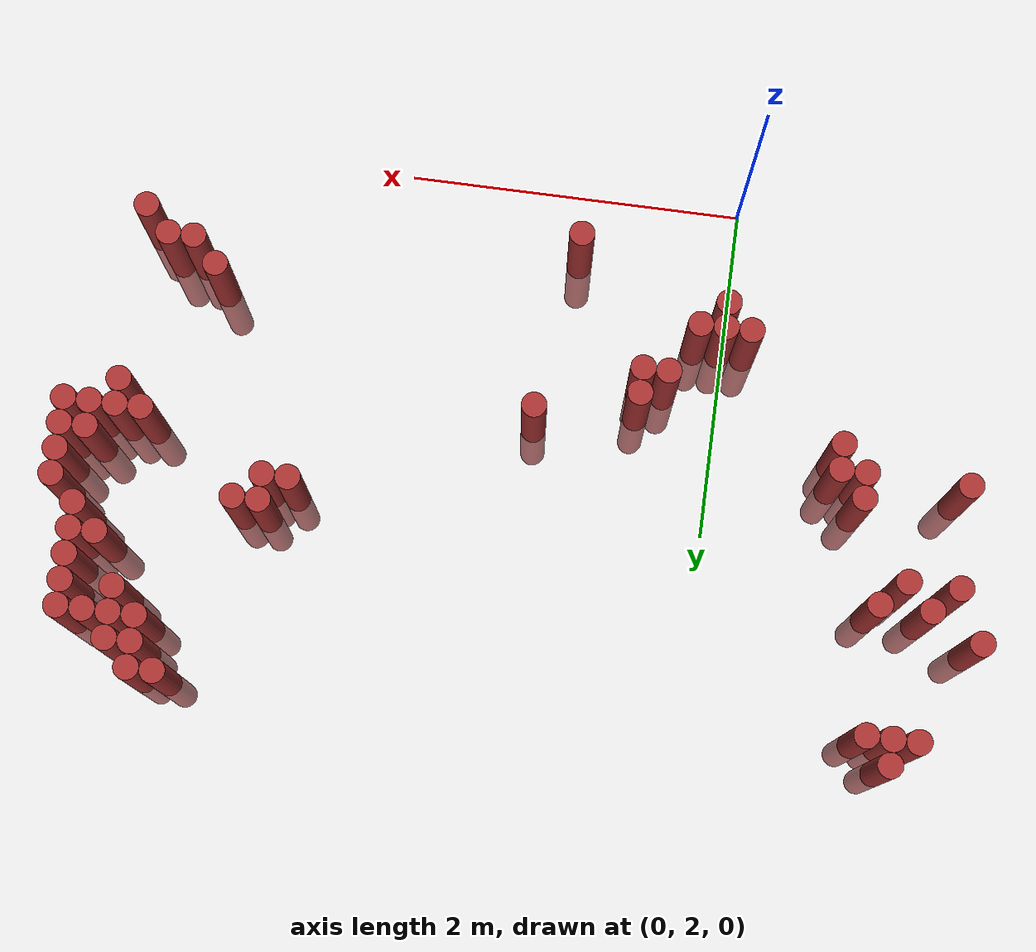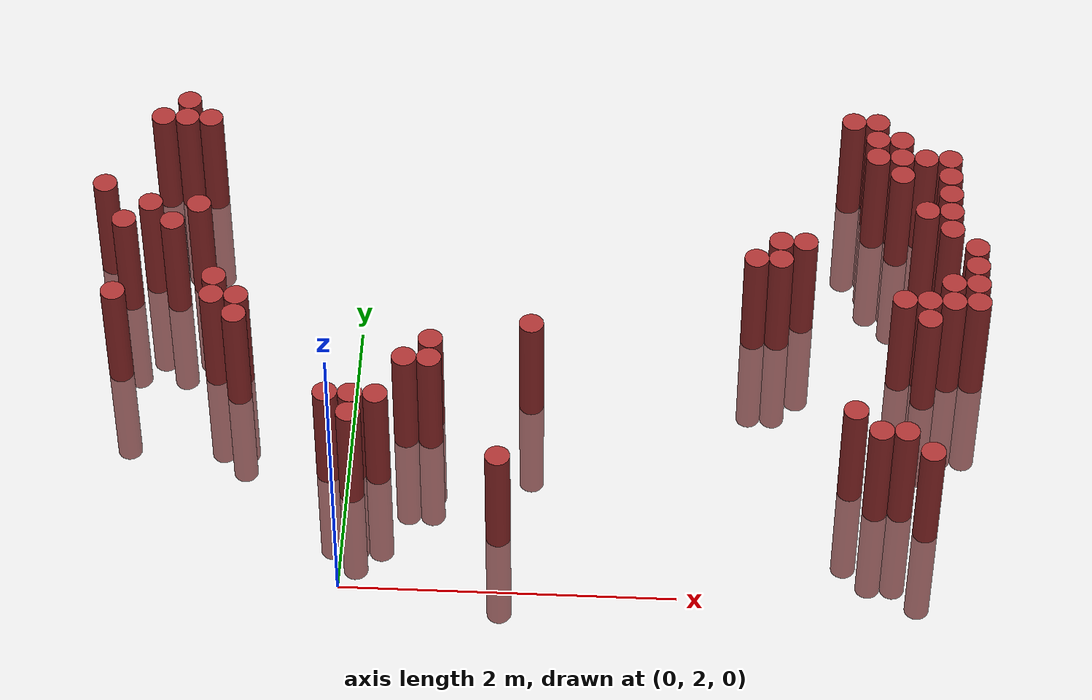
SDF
<sdf version="1.6">
 <world name="default">
  <model name="ground_plane">
   <static>1</static>
   <link name="link">
    <collision name="collision">
     <geometry><plane><normal>0 0 1</normal><size>100 100</size></plane></geometry>
     <surface><friction><ode><mu>100</mu><mu2>50</mu2></ode></friction></surface>
    </collision>
    <visual name="visual">
     <cast_shadows>0</cast_shadows>
     <geometry><plane><normal>0 0 1</normal><size>100 100</size></plane></geometry>
     <material>
      <script><uri>file://media/materials/scripts/gazebo.material</uri><name>Gazebo/Grey</name></script>
     </material>
    </visual>
   </link>
  </model>
  <model name="unit_cylinder_319">
   <static>1</static>
   <pose>-1.625000 4.525000 0.000000 0.000000 0.000000 0.000000</pose>
   <link name="link">
    <inertial>
     <mass>1</mass>
     <inertia><ixx>0.145833</ixx><ixy>0</ixy><ixz>0</ixz><iyy>0.145833</iyy><iyz>0</iyz><izz>0.125</izz></inertia>
    </inertial>
    <collision name="collision">
     <geometry><cylinder><radius>0.075000</radius><length>1.5</length></cylinder></geometry>
    </collision>
    <visual name="visual">
     <geometry><cylinder><radius>0.075000</radius><length>1.5</length></cylinder></geometry>
     <material>
      <ambient>0.648000 0.192000 0.192000 1</ambient>
      <diffuse>0.648000 0.192000 0.192000 1</diffuse>
     </material>
     <material>
      <script><name>Gazebo/Grey</name><uri>file://media/materials/scripts/gazebo.material</uri></script>
     </material>
    </visual>
   </link>
  </model>
  <model name="unit_cylinder_323">
   <static>1</static>
   <pose>-1.475000 3.625000 0.000000 0.000000 0.000000 0.000000</pose>
   <link name="link">
    <inertial>
     <mass>1</mass>
     <inertia><ixx>0.145833</ixx><ixy>0</ixy><ixz>0</ixz><iyy>0.145833</iyy><iyz>0</iyz><izz>0.125</izz></inertia>
    </inertial>
    <collision name="collision">
     <geometry><cylinder><radius>0.075000</radius><length>1.5</length></cylinder></geometry>
    </collision>
    <visual name="visual">
     <geometry><cylinder><radius>0.075000</radius><length>1.5</length></cylinder></geometry>
     <material>
      <ambient>0.648000 0.192000 0.192000 1</ambient>
      <diffuse>0.648000 0.192000 0.192000 1</diffuse>
     </material>
     <material>
      <script><name>Gazebo/Grey</name><uri>file://media/materials/scripts/gazebo.material</uri></script>
     </material>
    </visual>
   </link>
  </model>
  <model name="unit_cylinder_324">
   <static>1</static>
   <pose>-1.475000 4.225000 0.000000 0.000000 0.000000 0.000000</pose>
   <link name="link">
    <inertial>
     <mass>1</mass>
     <inertia><ixx>0.145833</ixx><ixy>0</ixy><ixz>0</ixz><iyy>0.145833</iyy><iyz>0</iyz><izz>0.125</izz></inertia>
    </inertial>
    <collision name="collision">
     <geometry><cylinder><radius>0.075000</radius><length>1.5</length></cylinder></geometry>
    </collision>
    <visual name="visual">
     <geometry><cylinder><radius>0.075000</radius><length>1.5</length></cylinder></geometry>
     <material>
      <ambient>0.648000 0.192000 0.192000 1</ambient>
      <diffuse>0.648000 0.192000 0.192000 1</diffuse>
     </material>
     <material>
      <script><name>Gazebo/Grey</name><uri>file://media/materials/scripts/gazebo.material</uri></script>
     </material>
    </visual>
   </link>
  </model>
  <model name="unit_cylinder_328">
   <static>1</static>
   <pose>-1.325000 4.375000 0.000000 0.000000 0.000000 0.000000</pose>
   <link name="link">
    <inertial>
     <mass>1</mass>
     <inertia><ixx>0.145833</ixx><ixy>0</ixy><ixz>0</ixz><iyy>0.145833</iyy><iyz>0</iyz><izz>0.125</izz></inertia>
    </inertial>
    <collision name="collision">
     <geometry><cylinder><radius>0.075000</radius><length>1.5</length></cylinder></geometry>
    </collision>
    <visual name="visual">
     <geometry><cylinder><radius>0.075000</radius><length>1.5</length></cylinder></geometry>
     <material>
      <ambient>0.648000 0.192000 0.192000 1</ambient>
      <diffuse>0.648000 0.192000 0.192000 1</diffuse>
     </material>
     <material>
      <script><name>Gazebo/Grey</name><uri>file://media/materials/scripts/gazebo.material</uri></script>
     </material>
    </visual>
   </link>
  </model>
  <model name="unit_cylinder_329">
   <static>1</static>
   <pose>-1.325000 5.125000 0.000000 0.000000 0.000000 0.000000</pose>
   <link name="link">
    <inertial>
     <mass>1</mass>
     <inertia><ixx>0.145833</ixx><ixy>0</ixy><ixz>0</ixz><iyy>0.145833</iyy><iyz>0</iyz><izz>0.125</izz></inertia>
    </inertial>
    <collision name="collision">
     <geometry><cylinder><radius>0.075000</radius><length>1.5</length></cylinder></geometry>
    </collision>
    <visual name="visual">
     <geometry><cylinder><radius>0.075000</radius><length>1.5</length></cylinder></geometry>
     <material>
      <ambient>0.648000 0.192000 0.192000 1</ambient>
      <diffuse>0.648000 0.192000 0.192000 1</diffuse>
     </material>
     <material>
      <script><name>Gazebo/Grey</name><uri>file://media/materials/scripts/gazebo.material</uri></script>
     </material>
    </visual>
   </link>
  </model>
  <model name="unit_cylinder_332">
   <static>1</static>
   <pose>-1.175000 4.225000 0.000000 0.000000 0.000000 0.000000</pose>
   <link name="link">
    <inertial>
     <mass>1</mass>
     <inertia><ixx>0.145833</ixx><ixy>0</ixy><ixz>0</ixz><iyy>0.145833</iyy><iyz>0</iyz><izz>0.125</izz></inertia>
    </inertial>
    <collision name="collision">
     <geometry><cylinder><radius>0.075000</radius><length>1.5</length></cylinder></geometry>
    </collision>
    <visual name="visual">
     <geometry><cylinder><radius>0.075000</radius><length>1.5</length></cylinder></geometry>
     <material>
      <ambient>0.648000 0.192000 0.192000 1</ambient>
      <diffuse>0.648000 0.192000 0.192000 1</diffuse>
     </material>
     <material>
      <script><name>Gazebo/Grey</name><uri>file://media/materials/scripts/gazebo.material</uri></script>
     </material>
    </visual>
   </link>
  </model>
  <model name="unit_cylinder_333">
   <static>1</static>
   <pose>-1.175000 5.125000 0.000000 0.000000 0.000000 0.000000</pose>
   <link name="link">
    <inertial>
     <mass>1</mass>
     <inertia><ixx>0.145833</ixx><ixy>0</ixy><ixz>0</ixz><iyy>0.145833</iyy><iyz>0</iyz><izz>0.125</izz></inertia>
    </inertial>
    <collision name="collision">
     <geometry><cylinder><radius>0.075000</radius><length>1.5</length></cylinder></geometry>
    </collision>
    <visual name="visual">
     <geometry><cylinder><radius>0.075000</radius><length>1.5</length></cylinder></geometry>
     <material>
      <ambient>0.648000 0.192000 0.192000 1</ambient>
      <diffuse>0.648000 0.192000 0.192000 1</diffuse>
     </material>
     <material>
      <script><name>Gazebo/Grey</name><uri>file://media/materials/scripts/gazebo.material</uri></script>
     </material>
    </visual>
   </link>
  </model>
  <model name="unit_cylinder_334">
   <static>1</static>
   <pose>-1.175000 5.275000 0.000000 0.000000 0.000000 0.000000</pose>
   <link name="link">
    <inertial>
     <mass>1</mass>
     <inertia><ixx>0.145833</ixx><ixy>0</ixy><ixz>0</ixz><iyy>0.145833</iyy><iyz>0</iyz><izz>0.125</izz></inertia>
    </inertial>
    <collision name="collision">
     <geometry><cylinder><radius>0.075000</radius><length>1.5</length></cylinder></geometry>
    </collision>
    <visual name="visual">
     <geometry><cylinder><radius>0.075000</radius><length>1.5</length></cylinder></geometry>
     <material>
      <ambient>0.648000 0.192000 0.192000 1</ambient>
      <diffuse>0.648000 0.192000 0.192000 1</diffuse>
     </material>
     <material>
      <script><name>Gazebo/Grey</name><uri>file://media/materials/scripts/gazebo.material</uri></script>
     </material>
    </visual>
   </link>
  </model>
  <model name="unit_cylinder_339">
   <static>1</static>
   <pose>-1.025000 4.375000 0.000000 0.000000 0.000000 0.000000</pose>
   <link name="link">
    <inertial>
     <mass>1</mass>
     <inertia><ixx>0.145833</ixx><ixy>0</ixy><ixz>0</ixz><iyy>0.145833</iyy><iyz>0</iyz><izz>0.125</izz></inertia>
    </inertial>
    <collision name="collision">
     <geometry><cylinder><radius>0.075000</radius><length>1.5</length></cylinder></geometry>
    </collision>
    <visual name="visual">
     <geometry><cylinder><radius>0.075000</radius><length>1.5</length></cylinder></geometry>
     <material>
      <ambient>0.648000 0.192000 0.192000 1</ambient>
      <diffuse>0.648000 0.192000 0.192000 1</diffuse>
     </material>
     <material>
      <script><name>Gazebo/Grey</name><uri>file://media/materials/scripts/gazebo.material</uri></script>
     </material>
    </visual>
   </link>
  </model>
  <model name="unit_cylinder_340">
   <static>1</static>
   <pose>-1.025000 5.125000 0.000000 0.000000 0.000000 0.000000</pose>
   <link name="link">
    <inertial>
     <mass>1</mass>
     <inertia><ixx>0.145833</ixx><ixy>0</ixy><ixz>0</ixz><iyy>0.145833</iyy><iyz>0</iyz><izz>0.125</izz></inertia>
    </inertial>
    <collision name="collision">
     <geometry><cylinder><radius>0.075000</radius><length>1.5</length></cylinder></geometry>
    </collision>
    <visual name="visual">
     <geometry><cylinder><radius>0.075000</radius><length>1.5</length></cylinder></geometry>
     <material>
      <ambient>0.648000 0.192000 0.192000 1</ambient>
      <diffuse>0.648000 0.192000 0.192000 1</diffuse>
     </material>
     <material>
      <script><name>Gazebo/Grey</name><uri>file://media/materials/scripts/gazebo.material</uri></script>
     </material>
    </visual>
   </link>
  </model>
  <model name="unit_cylinder_346">
   <static>1</static>
   <pose>-0.875000 3.625000 0.000000 0.000000 0.000000 0.000000</pose>
   <link name="link">
    <inertial>
     <mass>1</mass>
     <inertia><ixx>0.145833</ixx><ixy>0</ixy><ixz>0</ixz><iyy>0.145833</iyy><iyz>0</iyz><izz>0.125</izz></inertia>
    </inertial>
    <collision name="collision">
     <geometry><cylinder><radius>0.075000</radius><length>1.5</length></cylinder></geometry>
    </collision>
    <visual name="visual">
     <geometry><cylinder><radius>0.075000</radius><length>1.5</length></cylinder></geometry>
     <material>
      <ambient>0.648000 0.192000 0.192000 1</ambient>
      <diffuse>0.648000 0.192000 0.192000 1</diffuse>
     </material>
     <material>
      <script><name>Gazebo/Grey</name><uri>file://media/materials/scripts/gazebo.material</uri></script>
     </material>
    </visual>
   </link>
  </model>
  <model name="unit_cylinder_347">
   <static>1</static>
   <pose>-0.875000 3.775000 0.000000 0.000000 0.000000 0.000000</pose>
   <link name="link">
    <inertial>
     <mass>1</mass>
     <inertia><ixx>0.145833</ixx><ixy>0</ixy><ixz>0</ixz><iyy>0.145833</iyy><iyz>0</iyz><izz>0.125</izz></inertia>
    </inertial>
    <collision name="collision">
     <geometry><cylinder><radius>0.075000</radius><length>1.5</length></cylinder></geometry>
    </collision>
    <visual name="visual">
     <geometry><cylinder><radius>0.075000</radius><length>1.5</length></cylinder></geometry>
     <material>
      <ambient>0.648000 0.192000 0.192000 1</ambient>
      <diffuse>0.648000 0.192000 0.192000 1</diffuse>
     </material>
     <material>
      <script><name>Gazebo/Grey</name><uri>file://media/materials/scripts/gazebo.material</uri></script>
     </material>
    </visual>
   </link>
  </model>
  <model name="unit_cylinder_351">
   <static>1</static>
   <pose>-0.725000 3.475000 0.000000 0.000000 0.000000 0.000000</pose>
   <link name="link">
    <inertial>
     <mass>1</mass>
     <inertia><ixx>0.145833</ixx><ixy>0</ixy><ixz>0</ixz><iyy>0.145833</iyy><iyz>0</iyz><izz>0.125</izz></inertia>
    </inertial>
    <collision name="collision">
     <geometry><cylinder><radius>0.075000</radius><length>1.5</length></cylinder></geometry>
    </collision>
    <visual name="visual">
     <geometry><cylinder><radius>0.075000</radius><length>1.5</length></cylinder></geometry>
     <material>
      <ambient>0.648000 0.192000 0.192000 1</ambient>
      <diffuse>0.648000 0.192000 0.192000 1</diffuse>
     </material>
     <material>
      <script><name>Gazebo/Grey</name><uri>file://media/materials/scripts/gazebo.material</uri></script>
     </material>
    </visual>
   </link>
  </model>
  <model name="unit_cylinder_352">
   <static>1</static>
   <pose>-0.725000 3.625000 0.000000 0.000000 0.000000 0.000000</pose>
   <link name="link">
    <inertial>
     <mass>1</mass>
     <inertia><ixx>0.145833</ixx><ixy>0</ixy><ixz>0</ixz><iyy>0.145833</iyy><iyz>0</iyz><izz>0.125</izz></inertia>
    </inertial>
    <collision name="collision">
     <geometry><cylinder><radius>0.075000</radius><length>1.5</length></cylinder></geometry>
    </collision>
    <visual name="visual">
     <geometry><cylinder><radius>0.075000</radius><length>1.5</length></cylinder></geometry>
     <material>
      <ambient>0.648000 0.192000 0.192000 1</ambient>
      <diffuse>0.648000 0.192000 0.192000 1</diffuse>
     </material>
     <material>
      <script><name>Gazebo/Grey</name><uri>file://media/materials/scripts/gazebo.material</uri></script>
     </material>
    </visual>
   </link>
  </model>
  <model name="unit_cylinder_371">
   <static>1</static>
   <pose>-0.125000 2.875000 0.000000 0.000000 0.000000 0.000000</pose>
   <link name="link">
    <inertial>
     <mass>1</mass>
     <inertia><ixx>0.145833</ixx><ixy>0</ixy><ixz>0</ixz><iyy>0.145833</iyy><iyz>0</iyz><izz>0.125</izz></inertia>
    </inertial>
    <collision name="collision">
     <geometry><cylinder><radius>0.075000</radius><length>1.5</length></cylinder></geometry>
    </collision>
    <visual name="visual">
     <geometry><cylinder><radius>0.075000</radius><length>1.5</length></cylinder></geometry>
     <material>
      <ambient>0.648000 0.192000 0.192000 1</ambient>
      <diffuse>0.648000 0.192000 0.192000 1</diffuse>
     </material>
     <material>
      <script><name>Gazebo/Grey</name><uri>file://media/materials/scripts/gazebo.material</uri></script>
     </material>
    </visual>
   </link>
  </model>
  <model name="unit_cylinder_372">
   <static>1</static>
   <pose>0.025000 2.725000 0.000000 0.000000 0.000000 0.000000</pose>
   <link name="link">
    <inertial>
     <mass>1</mass>
     <inertia><ixx>0.145833</ixx><ixy>0</ixy><ixz>0</ixz><iyy>0.145833</iyy><iyz>0</iyz><izz>0.125</izz></inertia>
    </inertial>
    <collision name="collision">
     <geometry><cylinder><radius>0.075000</radius><length>1.5</length></cylinder></geometry>
    </collision>
    <visual name="visual">
     <geometry><cylinder><radius>0.075000</radius><length>1.5</length></cylinder></geometry>
     <material>
      <ambient>0.648000 0.192000 0.192000 1</ambient>
      <diffuse>0.648000 0.192000 0.192000 1</diffuse>
     </material>
     <material>
      <script><name>Gazebo/Grey</name><uri>file://media/materials/scripts/gazebo.material</uri></script>
     </material>
    </visual>
   </link>
  </model>
  <model name="unit_cylinder_373">
   <static>1</static>
   <pose>0.025000 2.875000 0.000000 0.000000 0.000000 0.000000</pose>
   <link name="link">
    <inertial>
     <mass>1</mass>
     <inertia><ixx>0.145833</ixx><ixy>0</ixy><ixz>0</ixz><iyy>0.145833</iyy><iyz>0</iyz><izz>0.125</izz></inertia>
    </inertial>
    <collision name="collision">
     <geometry><cylinder><radius>0.075000</radius><length>1.5</length></cylinder></geometry>
    </collision>
    <visual name="visual">
     <geometry><cylinder><radius>0.075000</radius><length>1.5</length></cylinder></geometry>
     <material>
      <ambient>0.648000 0.192000 0.192000 1</ambient>
      <diffuse>0.648000 0.192000 0.192000 1</diffuse>
     </material>
     <material>
      <script><name>Gazebo/Grey</name><uri>file://media/materials/scripts/gazebo.material</uri></script>
     </material>
    </visual>
   </link>
  </model>
  <model name="unit_cylinder_374">
   <static>1</static>
   <pose>0.175000 2.875000 0.000000 0.000000 0.000000 0.000000</pose>
   <link name="link">
    <inertial>
     <mass>1</mass>
     <inertia><ixx>0.145833</ixx><ixy>0</ixy><ixz>0</ixz><iyy>0.145833</iyy><iyz>0</iyz><izz>0.125</izz></inertia>
    </inertial>
    <collision name="collision">
     <geometry><cylinder><radius>0.075000</radius><length>1.5</length></cylinder></geometry>
    </collision>
    <visual name="visual">
     <geometry><cylinder><radius>0.075000</radius><length>1.5</length></cylinder></geometry>
     <material>
      <ambient>0.648000 0.192000 0.192000 1</ambient>
      <diffuse>0.648000 0.192000 0.192000 1</diffuse>
     </material>
     <material>
      <script><name>Gazebo/Grey</name><uri>file://media/materials/scripts/gazebo.material</uri></script>
     </material>
    </visual>
   </link>
  </model>
  <model name="unit_cylinder_376">
   <static>1</static>
   <pose>0.325000 3.175000 0.000000 0.000000 0.000000 0.000000</pose>
   <link name="link">
    <inertial>
     <mass>1</mass>
     <inertia><ixx>0.145833</ixx><ixy>0</ixy><ixz>0</ixz><iyy>0.145833</iyy><iyz>0</iyz><izz>0.125</izz></inertia>
    </inertial>
    <collision name="collision">
     <geometry><cylinder><radius>0.075000</radius><length>1.5</length></cylinder></geometry>
    </collision>
    <visual name="visual">
     <geometry><cylinder><radius>0.075000</radius><length>1.5</length></cylinder></geometry>
     <material>
      <ambient>0.648000 0.192000 0.192000 1</ambient>
      <diffuse>0.648000 0.192000 0.192000 1</diffuse>
     </material>
     <material>
      <script><name>Gazebo/Grey</name><uri>file://media/materials/scripts/gazebo.material</uri></script>
     </material>
    </visual>
   </link>
  </model>
  <model name="unit_cylinder_379">
   <static>1</static>
   <pose>0.475000 3.175000 0.000000 0.000000 0.000000 0.000000</pose>
   <link name="link">
    <inertial>
     <mass>1</mass>
     <inertia><ixx>0.145833</ixx><ixy>0</ixy><ixz>0</ixz><iyy>0.145833</iyy><iyz>0</iyz><izz>0.125</izz></inertia>
    </inertial>
    <collision name="collision">
     <geometry><cylinder><radius>0.075000</radius><length>1.5</length></cylinder></geometry>
    </collision>
    <visual name="visual">
     <geometry><cylinder><radius>0.075000</radius><length>1.5</length></cylinder></geometry>
     <material>
      <ambient>0.648000 0.192000 0.192000 1</ambient>
      <diffuse>0.648000 0.192000 0.192000 1</diffuse>
     </material>
     <material>
      <script><name>Gazebo/Grey</name><uri>file://media/materials/scripts/gazebo.material</uri></script>
     </material>
    </visual>
   </link>
  </model>
  <model name="unit_cylinder_380">
   <static>1</static>
   <pose>0.475000 3.325000 0.000000 0.000000 0.000000 0.000000</pose>
   <link name="link">
    <inertial>
     <mass>1</mass>
     <inertia><ixx>0.145833</ixx><ixy>0</ixy><ixz>0</ixz><iyy>0.145833</iyy><iyz>0</iyz><izz>0.125</izz></inertia>
    </inertial>
    <collision name="collision">
     <geometry><cylinder><radius>0.075000</radius><length>1.5</length></cylinder></geometry>
    </collision>
    <visual name="visual">
     <geometry><cylinder><radius>0.075000</radius><length>1.5</length></cylinder></geometry>
     <material>
      <ambient>0.648000 0.192000 0.192000 1</ambient>
      <diffuse>0.648000 0.192000 0.192000 1</diffuse>
     </material>
     <material>
      <script><name>Gazebo/Grey</name><uri>file://media/materials/scripts/gazebo.material</uri></script>
     </material>
    </visual>
   </link>
  </model>
  <model name="unit_cylinder_389">
   <static>1</static>
   <pose>0.925000 2.425000 0.000000 0.000000 0.000000 0.000000</pose>
   <link name="link">
    <inertial>
     <mass>1</mass>
     <inertia><ixx>0.145833</ixx><ixy>0</ixy><ixz>0</ixz><iyy>0.145833</iyy><iyz>0</iyz><izz>0.125</izz></inertia>
    </inertial>
    <collision name="collision">
     <geometry><cylinder><radius>0.075000</radius><length>1.5</length></cylinder></geometry>
    </collision>
    <visual name="visual">
     <geometry><cylinder><radius>0.075000</radius><length>1.5</length></cylinder></geometry>
     <material>
      <ambient>0.648000 0.192000 0.192000 1</ambient>
      <diffuse>0.648000 0.192000 0.192000 1</diffuse>
     </material>
     <material>
      <script><name>Gazebo/Grey</name><uri>file://media/materials/scripts/gazebo.material</uri></script>
     </material>
    </visual>
   </link>
  </model>
  <model name="unit_cylinder_391">
   <static>1</static>
   <pose>1.075000 3.475000 0.000000 0.000000 0.000000 0.000000</pose>
   <link name="link">
    <inertial>
     <mass>1</mass>
     <inertia><ixx>0.145833</ixx><ixy>0</ixy><ixz>0</ixz><iyy>0.145833</iyy><iyz>0</iyz><izz>0.125</izz></inertia>
    </inertial>
    <collision name="collision">
     <geometry><cylinder><radius>0.075000</radius><length>1.5</length></cylinder></geometry>
    </collision>
    <visual name="visual">
     <geometry><cylinder><radius>0.075000</radius><length>1.5</length></cylinder></geometry>
     <material>
      <ambient>0.648000 0.192000 0.192000 1</ambient>
      <diffuse>0.648000 0.192000 0.192000 1</diffuse>
     </material>
     <material>
      <script><name>Gazebo/Grey</name><uri>file://media/materials/scripts/gazebo.material</uri></script>
     </material>
    </visual>
   </link>
  </model>
  <model name="unit_cylinder_415">
   <static>1</static>
   <pose>2.425000 4.075000 0.000000 0.000000 0.000000 0.000000</pose>
   <link name="link">
    <inertial>
     <mass>1</mass>
     <inertia><ixx>0.145833</ixx><ixy>0</ixy><ixz>0</ixz><iyy>0.145833</iyy><iyz>0</iyz><izz>0.125</izz></inertia>
    </inertial>
    <collision name="collision">
     <geometry><cylinder><radius>0.075000</radius><length>1.5</length></cylinder></geometry>
    </collision>
    <visual name="visual">
     <geometry><cylinder><radius>0.075000</radius><length>1.5</length></cylinder></geometry>
     <material>
      <ambient>0.648000 0.192000 0.192000 1</ambient>
      <diffuse>0.648000 0.192000 0.192000 1</diffuse>
     </material>
     <material>
      <script><name>Gazebo/Grey</name><uri>file://media/materials/scripts/gazebo.material</uri></script>
     </material>
    </visual>
   </link>
  </model>
  <model name="unit_cylinder_421">
   <static>1</static>
   <pose>2.575000 4.075000 0.000000 0.000000 0.000000 0.000000</pose>
   <link name="link">
    <inertial>
     <mass>1</mass>
     <inertia><ixx>0.145833</ixx><ixy>0</ixy><ixz>0</ixz><iyy>0.145833</iyy><iyz>0</iyz><izz>0.125</izz></inertia>
    </inertial>
    <collision name="collision">
     <geometry><cylinder><radius>0.075000</radius><length>1.5</length></cylinder></geometry>
    </collision>
    <visual name="visual">
     <geometry><cylinder><radius>0.075000</radius><length>1.5</length></cylinder></geometry>
     <material>
      <ambient>0.648000 0.192000 0.192000 1</ambient>
      <diffuse>0.648000 0.192000 0.192000 1</diffuse>
     </material>
     <material>
      <script><name>Gazebo/Grey</name><uri>file://media/materials/scripts/gazebo.material</uri></script>
     </material>
    </visual>
   </link>
  </model>
  <model name="unit_cylinder_422">
   <static>1</static>
   <pose>2.575000 4.225000 0.000000 0.000000 0.000000 0.000000</pose>
   <link name="link">
    <inertial>
     <mass>1</mass>
     <inertia><ixx>0.145833</ixx><ixy>0</ixy><ixz>0</ixz><iyy>0.145833</iyy><iyz>0</iyz><izz>0.125</izz></inertia>
    </inertial>
    <collision name="collision">
     <geometry><cylinder><radius>0.075000</radius><length>1.5</length></cylinder></geometry>
    </collision>
    <visual name="visual">
     <geometry><cylinder><radius>0.075000</radius><length>1.5</length></cylinder></geometry>
     <material>
      <ambient>0.648000 0.192000 0.192000 1</ambient>
      <diffuse>0.648000 0.192000 0.192000 1</diffuse>
     </material>
     <material>
      <script><name>Gazebo/Grey</name><uri>file://media/materials/scripts/gazebo.material</uri></script>
     </material>
    </visual>
   </link>
  </model>
  <model name="unit_cylinder_429">
   <static>1</static>
   <pose>2.725000 4.225000 0.000000 0.000000 0.000000 0.000000</pose>
   <link name="link">
    <inertial>
     <mass>1</mass>
     <inertia><ixx>0.145833</ixx><ixy>0</ixy><ixz>0</ixz><iyy>0.145833</iyy><iyz>0</iyz><izz>0.125</izz></inertia>
    </inertial>
    <collision name="collision">
     <geometry><cylinder><radius>0.075000</radius><length>1.5</length></cylinder></geometry>
    </collision>
    <visual name="visual">
     <geometry><cylinder><radius>0.075000</radius><length>1.5</length></cylinder></geometry>
     <material>
      <ambient>0.648000 0.192000 0.192000 1</ambient>
      <diffuse>0.648000 0.192000 0.192000 1</diffuse>
     </material>
     <material>
      <script><name>Gazebo/Grey</name><uri>file://media/materials/scripts/gazebo.material</uri></script>
     </material>
    </visual>
   </link>
  </model>
  <model name="unit_cylinder_442">
   <static>1</static>
   <pose>3.025000 2.875000 0.000000 0.000000 0.000000 0.000000</pose>
   <link name="link">
    <inertial>
     <mass>1</mass>
     <inertia><ixx>0.145833</ixx><ixy>0</ixy><ixz>0</ixz><iyy>0.145833</iyy><iyz>0</iyz><izz>0.125</izz></inertia>
    </inertial>
    <collision name="collision">
     <geometry><cylinder><radius>0.075000</radius><length>1.5</length></cylinder></geometry>
    </collision>
    <visual name="visual">
     <geometry><cylinder><radius>0.075000</radius><length>1.5</length></cylinder></geometry>
     <material>
      <ambient>0.648000 0.192000 0.192000 1</ambient>
      <diffuse>0.648000 0.192000 0.192000 1</diffuse>
     </material>
     <material>
      <script><name>Gazebo/Grey</name><uri>file://media/materials/scripts/gazebo.material</uri></script>
     </material>
    </visual>
   </link>
  </model>
  <model name="unit_cylinder_443">
   <static>1</static>
   <pose>3.025000 5.275000 0.000000 0.000000 0.000000 0.000000</pose>
   <link name="link">
    <inertial>
     <mass>1</mass>
     <inertia><ixx>0.145833</ixx><ixy>0</ixy><ixz>0</ixz><iyy>0.145833</iyy><iyz>0</iyz><izz>0.125</izz></inertia>
    </inertial>
    <collision name="collision">
     <geometry><cylinder><radius>0.075000</radius><length>1.5</length></cylinder></geometry>
    </collision>
    <visual name="visual">
     <geometry><cylinder><radius>0.075000</radius><length>1.5</length></cylinder></geometry>
     <material>
      <ambient>0.648000 0.192000 0.192000 1</ambient>
      <diffuse>0.648000 0.192000 0.192000 1</diffuse>
     </material>
     <material>
      <script><name>Gazebo/Grey</name><uri>file://media/materials/scripts/gazebo.material</uri></script>
     </material>
    </visual>
   </link>
  </model>
  <model name="unit_cylinder_447">
   <static>1</static>
   <pose>3.175000 2.725000 0.000000 0.000000 0.000000 0.000000</pose>
   <link name="link">
    <inertial>
     <mass>1</mass>
     <inertia><ixx>0.145833</ixx><ixy>0</ixy><ixz>0</ixz><iyy>0.145833</iyy><iyz>0</iyz><izz>0.125</izz></inertia>
    </inertial>
    <collision name="collision">
     <geometry><cylinder><radius>0.075000</radius><length>1.5</length></cylinder></geometry>
    </collision>
    <visual name="visual">
     <geometry><cylinder><radius>0.075000</radius><length>1.5</length></cylinder></geometry>
     <material>
      <ambient>0.648000 0.192000 0.192000 1</ambient>
      <diffuse>0.648000 0.192000 0.192000 1</diffuse>
     </material>
     <material>
      <script><name>Gazebo/Grey</name><uri>file://media/materials/scripts/gazebo.material</uri></script>
     </material>
    </visual>
   </link>
  </model>
  <model name="unit_cylinder_448">
   <static>1</static>
   <pose>3.175000 4.975000 0.000000 0.000000 0.000000 0.000000</pose>
   <link name="link">
    <inertial>
     <mass>1</mass>
     <inertia><ixx>0.145833</ixx><ixy>0</ixy><ixz>0</ixz><iyy>0.145833</iyy><iyz>0</iyz><izz>0.125</izz></inertia>
    </inertial>
    <collision name="collision">
     <geometry><cylinder><radius>0.075000</radius><length>1.5</length></cylinder></geometry>
    </collision>
    <visual name="visual">
     <geometry><cylinder><radius>0.075000</radius><length>1.5</length></cylinder></geometry>
     <material>
      <ambient>0.648000 0.192000 0.192000 1</ambient>
      <diffuse>0.648000 0.192000 0.192000 1</diffuse>
     </material>
     <material>
      <script><name>Gazebo/Grey</name><uri>file://media/materials/scripts/gazebo.material</uri></script>
     </material>
    </visual>
   </link>
  </model>
  <model name="unit_cylinder_449">
   <static>1</static>
   <pose>3.175000 5.125000 0.000000 0.000000 0.000000 0.000000</pose>
   <link name="link">
    <inertial>
     <mass>1</mass>
     <inertia><ixx>0.145833</ixx><ixy>0</ixy><ixz>0</ixz><iyy>0.145833</iyy><iyz>0</iyz><izz>0.125</izz></inertia>
    </inertial>
    <collision name="collision">
     <geometry><cylinder><radius>0.075000</radius><length>1.5</length></cylinder></geometry>
    </collision>
    <visual name="visual">
     <geometry><cylinder><radius>0.075000</radius><length>1.5</length></cylinder></geometry>
     <material>
      <ambient>0.648000 0.192000 0.192000 1</ambient>
      <diffuse>0.648000 0.192000 0.192000 1</diffuse>
     </material>
     <material>
      <script><name>Gazebo/Grey</name><uri>file://media/materials/scripts/gazebo.material</uri></script>
     </material>
    </visual>
   </link>
  </model>
  <model name="unit_cylinder_450">
   <static>1</static>
   <pose>3.175000 5.275000 0.000000 0.000000 0.000000 0.000000</pose>
   <link name="link">
    <inertial>
     <mass>1</mass>
     <inertia><ixx>0.145833</ixx><ixy>0</ixy><ixz>0</ixz><iyy>0.145833</iyy><iyz>0</iyz><izz>0.125</izz></inertia>
    </inertial>
    <collision name="collision">
     <geometry><cylinder><radius>0.075000</radius><length>1.5</length></cylinder></geometry>
    </collision>
    <visual name="visual">
     <geometry><cylinder><radius>0.075000</radius><length>1.5</length></cylinder></geometry>
     <material>
      <ambient>0.648000 0.192000 0.192000 1</ambient>
      <diffuse>0.648000 0.192000 0.192000 1</diffuse>
     </material>
     <material>
      <script><name>Gazebo/Grey</name><uri>file://media/materials/scripts/gazebo.material</uri></script>
     </material>
    </visual>
   </link>
  </model>
  <model name="unit_cylinder_455">
   <static>1</static>
   <pose>3.325000 2.725000 0.000000 0.000000 0.000000 0.000000</pose>
   <link name="link">
    <inertial>
     <mass>1</mass>
     <inertia><ixx>0.145833</ixx><ixy>0</ixy><ixz>0</ixz><iyy>0.145833</iyy><iyz>0</iyz><izz>0.125</izz></inertia>
    </inertial>
    <collision name="collision">
     <geometry><cylinder><radius>0.075000</radius><length>1.5</length></cylinder></geometry>
    </collision>
    <visual name="visual">
     <geometry><cylinder><radius>0.075000</radius><length>1.5</length></cylinder></geometry>
     <material>
      <ambient>0.648000 0.192000 0.192000 1</ambient>
      <diffuse>0.648000 0.192000 0.192000 1</diffuse>
     </material>
     <material>
      <script><name>Gazebo/Grey</name><uri>file://media/materials/scripts/gazebo.material</uri></script>
     </material>
    </visual>
   </link>
  </model>
  <model name="unit_cylinder_456">
   <static>1</static>
   <pose>3.325000 3.775000 0.000000 0.000000 0.000000 0.000000</pose>
   <link name="link">
    <inertial>
     <mass>1</mass>
     <inertia><ixx>0.145833</ixx><ixy>0</ixy><ixz>0</ixz><iyy>0.145833</iyy><iyz>0</iyz><izz>0.125</izz></inertia>
    </inertial>
    <collision name="collision">
     <geometry><cylinder><radius>0.075000</radius><length>1.5</length></cylinder></geometry>
    </collision>
    <visual name="visual">
     <geometry><cylinder><radius>0.075000</radius><length>1.5</length></cylinder></geometry>
     <material>
      <ambient>0.648000 0.192000 0.192000 1</ambient>
      <diffuse>0.648000 0.192000 0.192000 1</diffuse>
     </material>
     <material>
      <script><name>Gazebo/Grey</name><uri>file://media/materials/scripts/gazebo.material</uri></script>
     </material>
    </visual>
   </link>
  </model>
  <model name="unit_cylinder_457">
   <static>1</static>
   <pose>3.325000 4.825000 0.000000 0.000000 0.000000 0.000000</pose>
   <link name="link">
    <inertial>
     <mass>1</mass>
     <inertia><ixx>0.145833</ixx><ixy>0</ixy><ixz>0</ixz><iyy>0.145833</iyy><iyz>0</iyz><izz>0.125</izz></inertia>
    </inertial>
    <collision name="collision">
     <geometry><cylinder><radius>0.075000</radius><length>1.5</length></cylinder></geometry>
    </collision>
    <visual name="visual">
     <geometry><cylinder><radius>0.075000</radius><length>1.5</length></cylinder></geometry>
     <material>
      <ambient>0.648000 0.192000 0.192000 1</ambient>
      <diffuse>0.648000 0.192000 0.192000 1</diffuse>
     </material>
     <material>
      <script><name>Gazebo/Grey</name><uri>file://media/materials/scripts/gazebo.material</uri></script>
     </material>
    </visual>
   </link>
  </model>
  <model name="unit_cylinder_458">
   <static>1</static>
   <pose>3.325000 4.975000 0.000000 0.000000 0.000000 0.000000</pose>
   <link name="link">
    <inertial>
     <mass>1</mass>
     <inertia><ixx>0.145833</ixx><ixy>0</ixy><ixz>0</ixz><iyy>0.145833</iyy><iyz>0</iyz><izz>0.125</izz></inertia>
    </inertial>
    <collision name="collision">
     <geometry><cylinder><radius>0.075000</radius><length>1.5</length></cylinder></geometry>
    </collision>
    <visual name="visual">
     <geometry><cylinder><radius>0.075000</radius><length>1.5</length></cylinder></geometry>
     <material>
      <ambient>0.648000 0.192000 0.192000 1</ambient>
      <diffuse>0.648000 0.192000 0.192000 1</diffuse>
     </material>
     <material>
      <script><name>Gazebo/Grey</name><uri>file://media/materials/scripts/gazebo.material</uri></script>
     </material>
    </visual>
   </link>
  </model>
  <model name="unit_cylinder_459">
   <static>1</static>
   <pose>3.325000 5.125000 0.000000 0.000000 0.000000 0.000000</pose>
   <link name="link">
    <inertial>
     <mass>1</mass>
     <inertia><ixx>0.145833</ixx><ixy>0</ixy><ixz>0</ixz><iyy>0.145833</iyy><iyz>0</iyz><izz>0.125</izz></inertia>
    </inertial>
    <collision name="collision">
     <geometry><cylinder><radius>0.075000</radius><length>1.5</length></cylinder></geometry>
    </collision>
    <visual name="visual">
     <geometry><cylinder><radius>0.075000</radius><length>1.5</length></cylinder></geometry>
     <material>
      <ambient>0.648000 0.192000 0.192000 1</ambient>
      <diffuse>0.648000 0.192000 0.192000 1</diffuse>
     </material>
     <material>
      <script><name>Gazebo/Grey</name><uri>file://media/materials/scripts/gazebo.material</uri></script>
     </material>
    </visual>
   </link>
  </model>
  <model name="unit_cylinder_461">
   <static>1</static>
   <pose>3.475000 2.575000 0.000000 0.000000 0.000000 0.000000</pose>
   <link name="link">
    <inertial>
     <mass>1</mass>
     <inertia><ixx>0.145833</ixx><ixy>0</ixy><ixz>0</ixz><iyy>0.145833</iyy><iyz>0</iyz><izz>0.125</izz></inertia>
    </inertial>
    <collision name="collision">
     <geometry><cylinder><radius>0.075000</radius><length>1.5</length></cylinder></geometry>
    </collision>
    <visual name="visual">
     <geometry><cylinder><radius>0.075000</radius><length>1.5</length></cylinder></geometry>
     <material>
      <ambient>0.648000 0.192000 0.192000 1</ambient>
      <diffuse>0.648000 0.192000 0.192000 1</diffuse>
     </material>
     <material>
      <script><name>Gazebo/Grey</name><uri>file://media/materials/scripts/gazebo.material</uri></script>
     </material>
    </visual>
   </link>
  </model>
  <model name="unit_cylinder_462">
   <static>1</static>
   <pose>3.475000 3.625000 0.000000 0.000000 0.000000 0.000000</pose>
   <link name="link">
    <inertial>
     <mass>1</mass>
     <inertia><ixx>0.145833</ixx><ixy>0</ixy><ixz>0</ixz><iyy>0.145833</iyy><iyz>0</iyz><izz>0.125</izz></inertia>
    </inertial>
    <collision name="collision">
     <geometry><cylinder><radius>0.075000</radius><length>1.5</length></cylinder></geometry>
    </collision>
    <visual name="visual">
     <geometry><cylinder><radius>0.075000</radius><length>1.5</length></cylinder></geometry>
     <material>
      <ambient>0.648000 0.192000 0.192000 1</ambient>
      <diffuse>0.648000 0.192000 0.192000 1</diffuse>
     </material>
     <material>
      <script><name>Gazebo/Grey</name><uri>file://media/materials/scripts/gazebo.material</uri></script>
     </material>
    </visual>
   </link>
  </model>
  <model name="unit_cylinder_463">
   <static>1</static>
   <pose>3.475000 3.775000 0.000000 0.000000 0.000000 0.000000</pose>
   <link name="link">
    <inertial>
     <mass>1</mass>
     <inertia><ixx>0.145833</ixx><ixy>0</ixy><ixz>0</ixz><iyy>0.145833</iyy><iyz>0</iyz><izz>0.125</izz></inertia>
    </inertial>
    <collision name="collision">
     <geometry><cylinder><radius>0.075000</radius><length>1.5</length></cylinder></geometry>
    </collision>
    <visual name="visual">
     <geometry><cylinder><radius>0.075000</radius><length>1.5</length></cylinder></geometry>
     <material>
      <ambient>0.648000 0.192000 0.192000 1</ambient>
      <diffuse>0.648000 0.192000 0.192000 1</diffuse>
     </material>
     <material>
      <script><name>Gazebo/Grey</name><uri>file://media/materials/scripts/gazebo.material</uri></script>
     </material>
    </visual>
   </link>
  </model>
  <model name="unit_cylinder_464">
   <static>1</static>
   <pose>3.475000 4.525000 0.000000 0.000000 0.000000 0.000000</pose>
   <link name="link">
    <inertial>
     <mass>1</mass>
     <inertia><ixx>0.145833</ixx><ixy>0</ixy><ixz>0</ixz><iyy>0.145833</iyy><iyz>0</iyz><izz>0.125</izz></inertia>
    </inertial>
    <collision name="collision">
     <geometry><cylinder><radius>0.075000</radius><length>1.5</length></cylinder></geometry>
    </collision>
    <visual name="visual">
     <geometry><cylinder><radius>0.075000</radius><length>1.5</length></cylinder></geometry>
     <material>
      <ambient>0.648000 0.192000 0.192000 1</ambient>
      <diffuse>0.648000 0.192000 0.192000 1</diffuse>
     </material>
     <material>
      <script><name>Gazebo/Grey</name><uri>file://media/materials/scripts/gazebo.material</uri></script>
     </material>
    </visual>
   </link>
  </model>
  <model name="unit_cylinder_465">
   <static>1</static>
   <pose>3.475000 4.975000 0.000000 0.000000 0.000000 0.000000</pose>
   <link name="link">
    <inertial>
     <mass>1</mass>
     <inertia><ixx>0.145833</ixx><ixy>0</ixy><ixz>0</ixz><iyy>0.145833</iyy><iyz>0</iyz><izz>0.125</izz></inertia>
    </inertial>
    <collision name="collision">
     <geometry><cylinder><radius>0.075000</radius><length>1.5</length></cylinder></geometry>
    </collision>
    <visual name="visual">
     <geometry><cylinder><radius>0.075000</radius><length>1.5</length></cylinder></geometry>
     <material>
      <ambient>0.648000 0.192000 0.192000 1</ambient>
      <diffuse>0.648000 0.192000 0.192000 1</diffuse>
     </material>
     <material>
      <script><name>Gazebo/Grey</name><uri>file://media/materials/scripts/gazebo.material</uri></script>
     </material>
    </visual>
   </link>
  </model>
  <model name="unit_cylinder_469">
   <static>1</static>
   <pose>3.625000 3.775000 0.000000 0.000000 0.000000 0.000000</pose>
   <link name="link">
    <inertial>
     <mass>1</mass>
     <inertia><ixx>0.145833</ixx><ixy>0</ixy><ixz>0</ixz><iyy>0.145833</iyy><iyz>0</iyz><izz>0.125</izz></inertia>
    </inertial>
    <collision name="collision">
     <geometry><cylinder><radius>0.075000</radius><length>1.5</length></cylinder></geometry>
    </collision>
    <visual name="visual">
     <geometry><cylinder><radius>0.075000</radius><length>1.5</length></cylinder></geometry>
     <material>
      <ambient>0.648000 0.192000 0.192000 1</ambient>
      <diffuse>0.648000 0.192000 0.192000 1</diffuse>
     </material>
     <material>
      <script><name>Gazebo/Grey</name><uri>file://media/materials/scripts/gazebo.material</uri></script>
     </material>
    </visual>
   </link>
  </model>
  <model name="unit_cylinder_470">
   <static>1</static>
   <pose>3.625000 3.925000 0.000000 0.000000 0.000000 0.000000</pose>
   <link name="link">
    <inertial>
     <mass>1</mass>
     <inertia><ixx>0.145833</ixx><ixy>0</ixy><ixz>0</ixz><iyy>0.145833</iyy><iyz>0</iyz><izz>0.125</izz></inertia>
    </inertial>
    <collision name="collision">
     <geometry><cylinder><radius>0.075000</radius><length>1.5</length></cylinder></geometry>
    </collision>
    <visual name="visual">
     <geometry><cylinder><radius>0.075000</radius><length>1.5</length></cylinder></geometry>
     <material>
      <ambient>0.648000 0.192000 0.192000 1</ambient>
      <diffuse>0.648000 0.192000 0.192000 1</diffuse>
     </material>
     <material>
      <script><name>Gazebo/Grey</name><uri>file://media/materials/scripts/gazebo.material</uri></script>
     </material>
    </visual>
   </link>
  </model>
  <model name="unit_cylinder_471">
   <static>1</static>
   <pose>3.625000 4.375000 0.000000 0.000000 0.000000 0.000000</pose>
   <link name="link">
    <inertial>
     <mass>1</mass>
     <inertia><ixx>0.145833</ixx><ixy>0</ixy><ixz>0</ixz><iyy>0.145833</iyy><iyz>0</iyz><izz>0.125</izz></inertia>
    </inertial>
    <collision name="collision">
     <geometry><cylinder><radius>0.075000</radius><length>1.5</length></cylinder></geometry>
    </collision>
    <visual name="visual">
     <geometry><cylinder><radius>0.075000</radius><length>1.5</length></cylinder></geometry>
     <material>
      <ambient>0.648000 0.192000 0.192000 1</ambient>
      <diffuse>0.648000 0.192000 0.192000 1</diffuse>
     </material>
     <material>
      <script><name>Gazebo/Grey</name><uri>file://media/materials/scripts/gazebo.material</uri></script>
     </material>
    </visual>
   </link>
  </model>
  <model name="unit_cylinder_472">
   <static>1</static>
   <pose>3.625000 4.525000 0.000000 0.000000 0.000000 0.000000</pose>
   <link name="link">
    <inertial>
     <mass>1</mass>
     <inertia><ixx>0.145833</ixx><ixy>0</ixy><ixz>0</ixz><iyy>0.145833</iyy><iyz>0</iyz><izz>0.125</izz></inertia>
    </inertial>
    <collision name="collision">
     <geometry><cylinder><radius>0.075000</radius><length>1.5</length></cylinder></geometry>
    </collision>
    <visual name="visual">
     <geometry><cylinder><radius>0.075000</radius><length>1.5</length></cylinder></geometry>
     <material>
      <ambient>0.648000 0.192000 0.192000 1</ambient>
      <diffuse>0.648000 0.192000 0.192000 1</diffuse>
     </material>
     <material>
      <script><name>Gazebo/Grey</name><uri>file://media/materials/scripts/gazebo.material</uri></script>
     </material>
    </visual>
   </link>
  </model>
  <model name="unit_cylinder_473">
   <static>1</static>
   <pose>3.625000 4.675000 0.000000 0.000000 0.000000 0.000000</pose>
   <link name="link">
    <inertial>
     <mass>1</mass>
     <inertia><ixx>0.145833</ixx><ixy>0</ixy><ixz>0</ixz><iyy>0.145833</iyy><iyz>0</iyz><izz>0.125</izz></inertia>
    </inertial>
    <collision name="collision">
     <geometry><cylinder><radius>0.075000</radius><length>1.5</length></cylinder></geometry>
    </collision>
    <visual name="visual">
     <geometry><cylinder><radius>0.075000</radius><length>1.5</length></cylinder></geometry>
     <material>
      <ambient>0.648000 0.192000 0.192000 1</ambient>
      <diffuse>0.648000 0.192000 0.192000 1</diffuse>
     </material>
     <material>
      <script><name>Gazebo/Grey</name><uri>file://media/materials/scripts/gazebo.material</uri></script>
     </material>
    </visual>
   </link>
  </model>
  <model name="unit_cylinder_474">
   <static>1</static>
   <pose>3.625000 4.825000 0.000000 0.000000 0.000000 0.000000</pose>
   <link name="link">
    <inertial>
     <mass>1</mass>
     <inertia><ixx>0.145833</ixx><ixy>0</ixy><ixz>0</ixz><iyy>0.145833</iyy><iyz>0</iyz><izz>0.125</izz></inertia>
    </inertial>
    <collision name="collision">
     <geometry><cylinder><radius>0.075000</radius><length>1.5</length></cylinder></geometry>
    </collision>
    <visual name="visual">
     <geometry><cylinder><radius>0.075000</radius><length>1.5</length></cylinder></geometry>
     <material>
      <ambient>0.648000 0.192000 0.192000 1</ambient>
      <diffuse>0.648000 0.192000 0.192000 1</diffuse>
     </material>
     <material>
      <script><name>Gazebo/Grey</name><uri>file://media/materials/scripts/gazebo.material</uri></script>
     </material>
    </visual>
   </link>
  </model>
  <model name="unit_cylinder_475">
   <static>1</static>
   <pose>3.625000 4.975000 0.000000 0.000000 0.000000 0.000000</pose>
   <link name="link">
    <inertial>
     <mass>1</mass>
     <inertia><ixx>0.145833</ixx><ixy>0</ixy><ixz>0</ixz><iyy>0.145833</iyy><iyz>0</iyz><izz>0.125</izz></inertia>
    </inertial>
    <collision name="collision">
     <geometry><cylinder><radius>0.075000</radius><length>1.5</length></cylinder></geometry>
    </collision>
    <visual name="visual">
     <geometry><cylinder><radius>0.075000</radius><length>1.5</length></cylinder></geometry>
     <material>
      <ambient>0.648000 0.192000 0.192000 1</ambient>
      <diffuse>0.648000 0.192000 0.192000 1</diffuse>
     </material>
     <material>
      <script><name>Gazebo/Grey</name><uri>file://media/materials/scripts/gazebo.material</uri></script>
     </material>
    </visual>
   </link>
  </model>
  <model name="unit_cylinder_487">
   <static>1</static>
   <pose>3.775000 3.775000 0.000000 0.000000 0.000000 0.000000</pose>
   <link name="link">
    <inertial>
     <mass>1</mass>
     <inertia><ixx>0.145833</ixx><ixy>0</ixy><ixz>0</ixz><iyy>0.145833</iyy><iyz>0</iyz><izz>0.125</izz></inertia>
    </inertial>
    <collision name="collision">
     <geometry><cylinder><radius>0.075000</radius><length>1.5</length></cylinder></geometry>
    </collision>
    <visual name="visual">
     <geometry><cylinder><radius>0.075000</radius><length>1.5</length></cylinder></geometry>
     <material>
      <ambient>0.648000 0.192000 0.192000 1</ambient>
      <diffuse>0.648000 0.192000 0.192000 1</diffuse>
     </material>
     <material>
      <script><name>Gazebo/Grey</name><uri>file://media/materials/scripts/gazebo.material</uri></script>
     </material>
    </visual>
   </link>
  </model>
  <model name="unit_cylinder_488">
   <static>1</static>
   <pose>3.775000 3.925000 0.000000 0.000000 0.000000 0.000000</pose>
   <link name="link">
    <inertial>
     <mass>1</mass>
     <inertia><ixx>0.145833</ixx><ixy>0</ixy><ixz>0</ixz><iyy>0.145833</iyy><iyz>0</iyz><izz>0.125</izz></inertia>
    </inertial>
    <collision name="collision">
     <geometry><cylinder><radius>0.075000</radius><length>1.5</length></cylinder></geometry>
    </collision>
    <visual name="visual">
     <geometry><cylinder><radius>0.075000</radius><length>1.5</length></cylinder></geometry>
     <material>
      <ambient>0.648000 0.192000 0.192000 1</ambient>
      <diffuse>0.648000 0.192000 0.192000 1</diffuse>
     </material>
     <material>
      <script><name>Gazebo/Grey</name><uri>file://media/materials/scripts/gazebo.material</uri></script>
     </material>
    </visual>
   </link>
  </model>
  <model name="unit_cylinder_489">
   <static>1</static>
   <pose>3.775000 4.075000 0.000000 0.000000 0.000000 0.000000</pose>
   <link name="link">
    <inertial>
     <mass>1</mass>
     <inertia><ixx>0.145833</ixx><ixy>0</ixy><ixz>0</ixz><iyy>0.145833</iyy><iyz>0</iyz><izz>0.125</izz></inertia>
    </inertial>
    <collision name="collision">
     <geometry><cylinder><radius>0.075000</radius><length>1.5</length></cylinder></geometry>
    </collision>
    <visual name="visual">
     <geometry><cylinder><radius>0.075000</radius><length>1.5</length></cylinder></geometry>
     <material>
      <ambient>0.648000 0.192000 0.192000 1</ambient>
      <diffuse>0.648000 0.192000 0.192000 1</diffuse>
     </material>
     <material>
      <script><name>Gazebo/Grey</name><uri>file://media/materials/scripts/gazebo.material</uri></script>
     </material>
    </visual>
   </link>
  </model>
  <model name="unit_cylinder_490">
   <static>1</static>
   <pose>3.775000 4.225000 0.000000 0.000000 0.000000 0.000000</pose>
   <link name="link">
    <inertial>
     <mass>1</mass>
     <inertia><ixx>0.145833</ixx><ixy>0</ixy><ixz>0</ixz><iyy>0.145833</iyy><iyz>0</iyz><izz>0.125</izz></inertia>
    </inertial>
    <collision name="collision">
     <geometry><cylinder><radius>0.075000</radius><length>1.5</length></cylinder></geometry>
    </collision>
    <visual name="visual">
     <geometry><cylinder><radius>0.075000</radius><length>1.5</length></cylinder></geometry>
     <material>
      <ambient>0.648000 0.192000 0.192000 1</ambient>
      <diffuse>0.648000 0.192000 0.192000 1</diffuse>
     </material>
     <material>
      <script><name>Gazebo/Grey</name><uri>file://media/materials/scripts/gazebo.material</uri></script>
     </material>
    </visual>
   </link>
  </model>
 </world>
</sdf>
